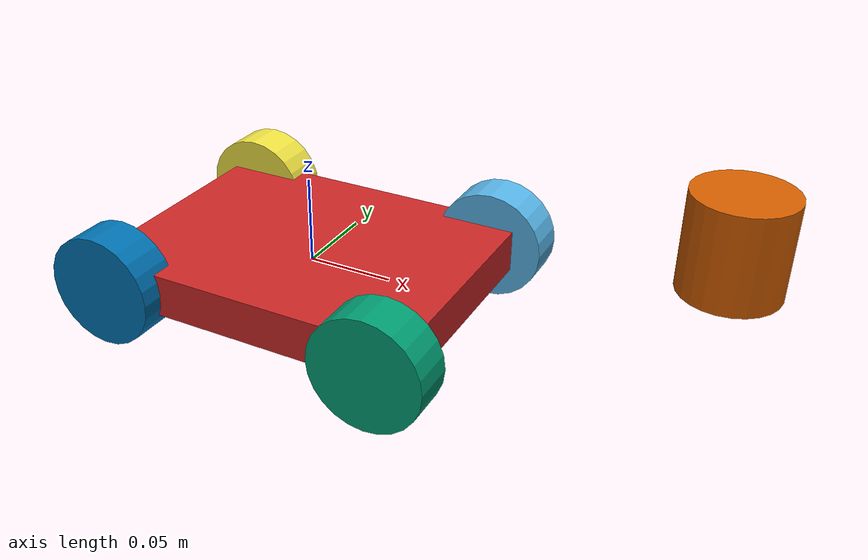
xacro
<?xml version="1.0" ?>
<robot name="rover_bot" xmlns:xarco="http://www.ros.org/wiki/xacro">
  <gazebo reference="link_chassis">
    <material>Gazebo/Red</material>
  </gazebo>
  <gazebo>
    <plugin name="skid_steer_drive_controller" filename="libgazebo_ros_skid_steer_drive.so">
      <updateRate>100.0</updateRate>
      <robotNamespace>/</robotNamespace>
      <leftFrontJoint>front_left_wheel_joint</leftFrontJoint>
      <rightFrontJoint>front_right_wheel_joint</rightFrontJoint>
      <leftRearJoint>back_left_wheel_joint</leftRearJoint>
      <rightRearJoint>back_right_wheel_joint</rightRearJoint>
      <wheelSeparation>0.15</wheelSeparation>
      <wheelDiameter>0.065</wheelDiameter>
      <robotBaseFrame>base_link</robotBaseFrame>
      <torque>0.0343</torque>
      <topicName>cmd_vel</topicName>
      <broadcastTF>false</broadcastTF>
    </plugin>
  </gazebo>
<link name="link_chassis">
  <pose>0 0 0.325 0 0 0</pose>
  <inertial>
    <mass value = "0.04"/>
    <inertia ixx="0.00395416666667" ixy="0" ixz="0" iyy="0.0106208333333" iyz="0" izz="0.0106208333333"/>
  </inertial>
  <collision>
    <geometry>
      <box size="0.196 0.15 0.025"/>
    </geometry>
  </collision>
  <visual>
    <geometry>
      <box size="0.196 0.15 0.025"/>
    </geometry>
  </visual>
</link>
<!-- defining wheels -->
<link name="link_front_right_wheel">
  <inertial>
    <mass value="0.034"/>
    <origin rpy="0 1.5707 1.5707" xyz="0 0 0"/>
    <inertia ixx="0.0000526666666667" ixy="0" ixz="0" iyy="0.0000526666666667" iyz="0" izz="0.0001"/>
  </inertial>
  <collision name="link_front_right_wheel_collision">
    <origin rpy="0 1.5707 1.5707" xyz="0 0 0"/>
    <geometry>
      <cylinder length="0.025" radius="0.0325"/>
    </geometry>
  </collision>
  <visual name="link_front_right_wheel_visual">
    <origin rpy="0 1.5707 1.5707" xyz="0 0 0"/>
    <geometry>
      <cylinder length="0.025" radius="0.0325"/>
    </geometry>
  </visual>
</link>
<link name="link_front_left_wheel">
  <inertial>
    <mass value="0.034"/>
    <origin rpy="0 1.5707 1.5707" xyz="0 0 0"/>
    <inertia ixx="0.000526666666667" ixy="0" ixz="0" iyy="0.000526666666667" iyz="0" izz="0.001"/>
  </inertial>
  <collision name="link_front_left_wheel_collision">
    <origin rpy="0 1.5707 1.5707" xyz="0 0 0"/>
    <geometry>
      <cylinder length="0.025" radius="0.0325"/>
    </geometry>
  </collision>
  <visual name="link_front_left_wheel_visual">
    <origin rpy="0 1.5707 1.5707" xyz="0 0 0"/>
    <geometry>
      <cylinder length="0.025" radius="0.0325"/>
    </geometry>
  </visual>
</link>
<link name="link_back_right_wheel">
  <inertial>
    <mass value="0.034"/>
    <origin rpy="0 1.5707 1.5707" xyz="0 0 0"/>
    <inertia ixx="0.000526666666667" ixy="0" ixz="0" iyy="0.000526666666667" iyz="0" izz="0.001"/>
  </inertial>
  <collision name="link_back_right_wheel_collision">
    <origin rpy="0 1.5707 1.5707" xyz="0 0 0"/>
    <geometry>
      <cylinder length="0.025" radius="0.0325"/>
    </geometry>
  </collision>
  <visual name="link_back_right_wheel_visual">
    <origin rpy="0 1.5707 1.5707" xyz="0 0 0"/>
    <geometry>
      <cylinder length="0.025" radius="0.0325"/>
    </geometry>
  </visual>
</link>
<link name="link_back_left_wheel">
  <inertial>
    <mass value="0.034"/>
    <origin rpy="0 1.5707 1.5707" xyz="0 0 0"/>
    <inertia ixx="0.000526666666667" ixy="0" ixz="0" iyy="0.000526666666667" iyz="0" izz="0.001"/>
  </inertial>
  <collision name="link_back_left_wheel_collision">
    <origin rpy="0 1.5707 1.5707" xyz="0 0 0"/>
    <geometry>
      <cylinder length="0.025" radius="0.0325"/>
    </geometry>
  </collision>
  <visual name="link_back_left_wheel_visual">
    <origin rpy="0 1.5707 1.5707" xyz="0 0 0"/>
    <geometry>
      <cylinder length="0.025" radius="0.0325"/>
    </geometry>
  </visual>
</link>
<!-- defining joints -->
<joint name="front_right_wheel_joint" type="continuous">
  <origin rpy="0 0 0" xyz="0.083 0.075 0"/>
  <child link="link_front_right_wheel"/>
  <parent link="link_chassis"/>
  <axis rpy="0 0 0" xyz="0 1 0"/>
  <limit effort="100" velocity="1"/>
  <joint_properties damping="1.0" friction="1.0"/>
</joint>
<joint name="front_left_wheel_joint" type="continuous">
  <origin rpy="0 0 0" xyz="0.083 -0.075 0"/>
  <child link="link_front_left_wheel"/>
  <parent link="link_chassis"/>
  <axis rpy="0 0 0" xyz="0 1 0"/>
  <limit effort="100" velocity="1"/>
  <joint_properties damping="1.0" friction="1.0"/>
</joint>
<joint name="back_right_wheel_joint" type="continuous">
  <origin rpy="0 0 0" xyz="-0.083 0.075 0"/>
  <child link="link_back_right_wheel"/>
  <parent link="link_chassis"/>
  <axis rpy="0 0 0" xyz="0 1 0"/>
  <limit effort="100" velocity="1"/>
  <joint_properties damping="1.0" friction="1.0"/>
</joint>
<joint name="back_left_wheel_joint" type="continuous">
  <origin rpy="0 0 0" xyz="-0.083 -0.075 0"/>
  <child link="link_back_left_wheel"/>
  <parent link="link_chassis"/>
  <axis rpy="0 0 0" xyz="0 1 0"/>
  <limit effort="100" velocity="1"/>
  <joint_properties damping="1.0" friction="1.0"/>
</joint>

 <!-- camera -->
  <gazebo reference="camera_link">
    <sensor type="camera" name="camera1">
      <update_rate>30.0</update_rate>
      <camera name="head">
        <horizontal_fov>1.3962634</horizontal_fov>
        <image>
          <width>400</width>
          <height>300</height>
          <format>R8G8B8</format>
        </image>
        <clip>
          <near>0.2</near>
          <far>300</far>
        </clip>
        <noise>
          <type>gaussian</type>
          <mean>0.0</mean>
          <stddev>0.007</stddev>
        </noise>
      </camera>

      <plugin name="camera_controller" filename="libgazebo_ros_camera.so">
        <alwaysOn>true</alwaysOn>
        <updateRate>0.0</updateRate>
        <cameraName>/follower/camera1</cameraName>
        <imageTopicName>image_raw</imageTopicName>
        <cameraInfoTopicName>camera_info</cameraInfoTopicName>
        <frameName>camera_link</frameName>
        <hackBaseline>0.07</hackBaseline>
        <distortionK1>0.0</distortionK1>
        <distortionK2>0.0</distortionK2>
        <distortionK3>0.0</distortionK3>
        <distortionT1>0.0</distortionT1>
        <distortionT2>0.0</distortionT2>
      </plugin>
    </sensor>
  </gazebo>

  <link name="camera_link">
    <inertial>
      <mass value="1"/>
      <origin rpy="0 0 0" xyz="0 0 0.1"/>
      <inertia ixx="0.00036458333333333335" ixy="0.0" ixz="0.0"
        iyy="0.00036458333333333335" iyz="0.0" izz="0.00031250000000000006"/>
    </inertial>
    <collision>
      <geometry>
        <cylinder length="0.05" radius="0.025" />
      </geometry>
    </collision>
    <visual>
      <origin rpy="0 0 0" xyz="0 0 0"/>
      <geometry>
        <cylinder length="0.05" radius="0.025" />
      </geometry>
    </visual>
  </link>

  <joint name="camera_joint" type="fixed">
    <origin rpy="0 0 0" xyz="0.23 0 0.07"/>
    <child link="camera_link"/>
    <parent link="link_chassis"/>
  </joint>

<gazebo>
<plugin name = "gazebo_ros_control" filename = "libgazebo_ros_control.so">
<robotNamespace>/robolab_ugv</robotNamespace>
</plugin>
</gazebo>

<transmission name = "front_right_wheel">
    <type>transmission_interface/SimpleTransmission</type>
    <actuator name = "front_right_motor">
        <mechanicalReduction>1</mechanicalReduction>
    </actuator>
    <joint name = "front_right_wheel_joint">
        <hardwareInterface>EffortJointInterface</hardwareInterface>
    </joint>
</transmission>

<transmission name = "front_left_wheel">
    <type>transmission_interface/SimpleTransmission</type>
    <actuator name = "front_left_motor">
        <mechanicalReduction>1</mechanicalReduction>
    </actuator>
    <joint name = "front_left_wheel_joint">
        <hardwareInterface>EffortJointInterface</hardwareInterface>
    </joint>
</transmission>

</robot>
